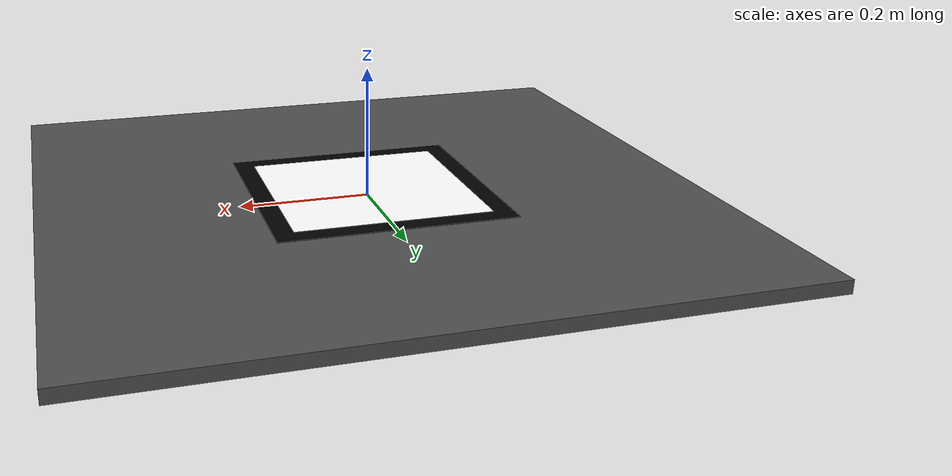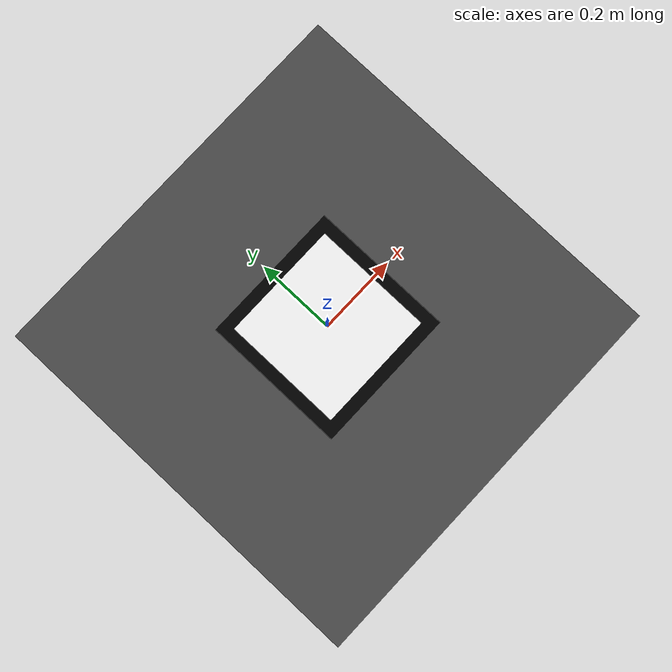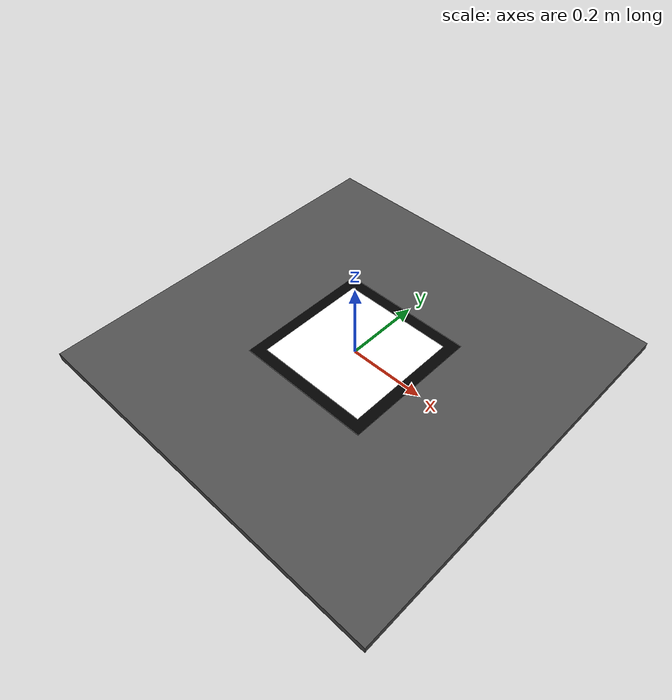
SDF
<?xml version='1.0'?>
<sdf version="1.9">
  <model name="landing_pad">
    <static>true</static>

    <link name="pad_link">
      <pose>0 0 0 0 0 0</pose>
      <inertial>
        <mass>1.0</mass>
        <inertia>
          <ixx>0.083</ixx><iyy>0.083</iyy><izz>0.167</izz>
          <ixy>0</ixy><ixz>0</ixz><iyz>0</iyz>
        </inertia>
      </inertial>

      <!-- Base pad -->
      <collision name="collision">
        <geometry>
          <box><size>1.0 1.0 0.02</size></box>
        </geometry>
      </collision>
      <visual name="pad_visual">
        <geometry>
          <box><size>1.0 1.0 0.02</size></box>
        </geometry>
        <material>
          <ambient>0.2 0.2 0.2 1</ambient>
          <diffuse>0.3 0.3 0.3 1</diffuse>
        </material>
      </visual>

      <!-- ArUco marker (ID=1, 30cm×30cm white square on top) -->
      <visual name="aruco_marker">
        <pose>0 0 0.011 0 0 0</pose>
        <geometry>
          <box><size>0.30 0.30 0.001</size></box>
        </geometry>
        <material>
          <ambient>1 1 1 1</ambient>
          <diffuse>1 1 1 1</diffuse>
          <emissive>0.95 0.95 0.95 1</emissive>
        </material>
      </visual>
      <!-- Black border so marker is detectable -->
      <visual name="aruco_border">
        <pose>0 0 0.0105 0 0 0</pose>
        <geometry>
          <box><size>0.36 0.36 0.001</size></box>
        </geometry>
        <material>
          <ambient>0 0 0 1</ambient>
          <diffuse>0 0 0 1</diffuse>
          <emissive>0 0 0 1</emissive>
        </material>
      </visual>

    </link>
  </model>
</sdf>
